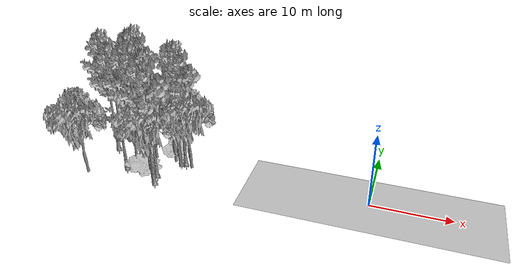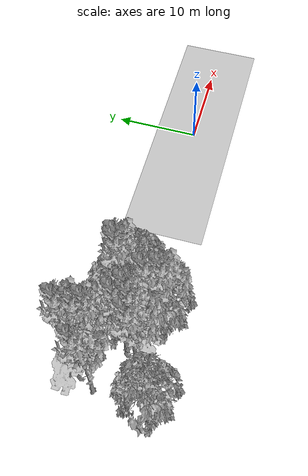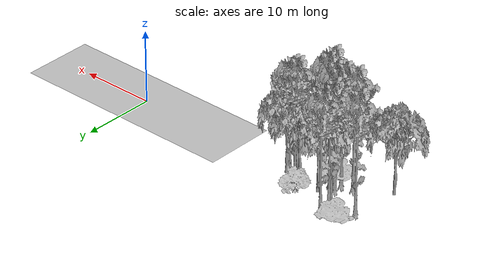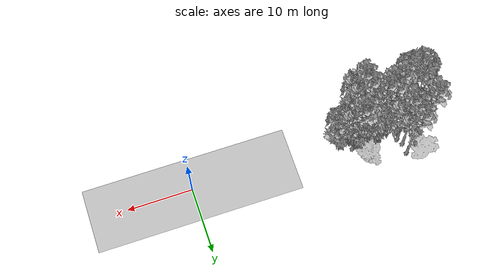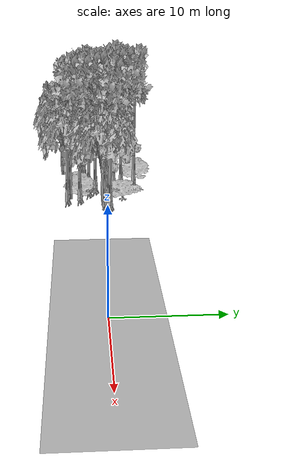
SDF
<sdf version="1.7">
 <world name="default">
  <model name="ground_plane">
   <static>1</static>
   <link name="link">
    <collision name="collision">
     <pose>-50 0 0 0 -0 0</pose>
     <geometry><plane><normal>0 0 1</normal><size>100 100</size></plane></geometry>
     <surface><contact><ode><min_depth>0.01</min_depth><max_vel>0</max_vel></ode></contact></surface>
    </collision>
    <visual name="grass">
     <cast_shadows>0</cast_shadows>
     <geometry>
      <mesh>
       <scale>0.5814285714285714 0.18142857142857144 0.1</scale>
       <uri>file://grass_plane/meshes/grass_plane.dae</uri>
      </mesh>
     </geometry>
    </visual>
   </link>
  </model>
  <model name="Tree 5">
   <static>1</static>
   <pose>-29.21881399212414 -2.4998693914355172 0 1.57079 -0 0</pose>
   <link name="link">
    <collision name="collision">
     <geometry><mesh><scale>3 2 3</scale><uri>model://tree_3/meshes/tree_3.obj</uri></mesh></geometry>
    </collision>
    <visual name="visual">
     <geometry><mesh><scale>3 2 3</scale><uri>model://tree_3/meshes/tree_3.obj</uri></mesh></geometry>
    </visual>
   </link>
  </model>
  <model name="Tree 54">
   <static>1</static>
   <pose>-32.02114886522466 -1.8515691958540632 0 1.57079 -0 0</pose>
   <link name="link">
    <collision name="collision">
     <geometry><mesh><scale>3.5 5 3.5</scale><uri>model://tree_9/meshes/tree_9.obj</uri></mesh></geometry>
    </collision>
    <visual name="visual">
     <geometry><mesh><scale>3.5 5 3.5</scale><uri>model://tree_9/meshes/tree_9.obj</uri></mesh></geometry>
    </visual>
   </link>
  </model>
  <model name="Tree 55">
   <static>1</static>
   <pose>-24.864350440698413 1.3218693597686624 0 1.57079 -0 0</pose>
   <link name="link">
    <collision name="collision">
     <geometry><mesh><scale>3.5 5 3.5</scale><uri>model://tree_9/meshes/tree_9.obj</uri></mesh></geometry>
    </collision>
    <visual name="visual">
     <geometry><mesh><scale>3.5 5 3.5</scale><uri>model://tree_9/meshes/tree_9.obj</uri></mesh></geometry>
    </visual>
   </link>
  </model>
  <model name="Tree 76">
   <static>1</static>
   <pose>-34.814906298194984 4.6248376932151025 0 1.57079 -0 0</pose>
   <link name="link">
    <collision name="collision">
     <geometry><mesh><scale>3 2 3</scale><uri>model://tree_3/meshes/tree_3.obj</uri></mesh></geometry>
    </collision>
    <visual name="visual">
     <geometry><mesh><scale>3 2 3</scale><uri>model://tree_3/meshes/tree_3.obj</uri></mesh></geometry>
    </visual>
   </link>
  </model>
  <model name="Tree 95">
   <static>1</static>
   <pose>-25.35005514734193 0.5058380098530719 0 1.57079 -0 0</pose>
   <link name="link">
    <collision name="collision">
     <geometry><mesh><scale>3.5 5 3.5</scale><uri>model://tree_2/meshes/tree_2.obj</uri></mesh></geometry>
    </collision>
    <visual name="visual">
     <geometry><mesh><scale>3.5 5 3.5</scale><uri>model://tree_2/meshes/tree_2.obj</uri></mesh></geometry>
    </visual>
   </link>
  </model>
  <model name="Tree 98">
   <static>1</static>
   <pose>-36.428803381543126 -4.341760985315727 0 1.57079 -0 0</pose>
   <link name="link">
    <collision name="collision">
     <geometry><mesh><scale>3.5 5 3.5</scale><uri>model://tree_2/meshes/tree_2.obj</uri></mesh></geometry>
    </collision>
    <visual name="visual">
     <geometry><mesh><scale>3.5 5 3.5</scale><uri>model://tree_2/meshes/tree_2.obj</uri></mesh></geometry>
    </visual>
   </link>
  </model>
  <model name="Tree 124">
   <static>1</static>
   <pose>-23.767717955621176 0.5628327683738945 0 1.57079 -0 0</pose>
   <link name="link">
    <collision name="collision">
     <geometry><mesh><scale>3.5 5 3.5</scale><uri>model://tree_2/meshes/tree_2.obj</uri></mesh></geometry>
    </collision>
    <visual name="visual">
     <geometry><mesh><scale>3.5 5 3.5</scale><uri>model://tree_2/meshes/tree_2.obj</uri></mesh></geometry>
    </visual>
   </link>
  </model>
  <model name="Tree 139">
   <static>1</static>
   <pose>-27.050766096649706 2.8859606431824893 0 1.57079 -0 0</pose>
   <link name="link">
    <collision name="collision">
     <geometry><mesh><scale>4 2.5 4</scale><uri>model://tree_1/meshes/tree_1.obj</uri></mesh></geometry>
    </collision>
    <visual name="visual">
     <geometry><mesh><scale>4 2.5 4</scale><uri>model://tree_1/meshes/tree_1.obj</uri></mesh></geometry>
    </visual>
   </link>
  </model>
  <model name="Tree 178">
   <static>1</static>
   <pose>-30.432813068663307 -1.5722076642737939 0 1.57079 -0 0</pose>
   <link name="link">
    <collision name="collision">
     <geometry><mesh><scale>3.5 5 3.5</scale><uri>model://tree_9/meshes/tree_9.obj</uri></mesh></geometry>
    </collision>
    <visual name="visual">
     <geometry><mesh><scale>3.5 5 3.5</scale><uri>model://tree_9/meshes/tree_9.obj</uri></mesh></geometry>
    </visual>
   </link>
  </model>
  <model name="Tree 180">
   <static>1</static>
   <pose>-27.49284651263252 -3.302958220946575 0 1.57079 -0 0</pose>
   <link name="link">
    <collision name="collision">
     <geometry><mesh><scale>3.5 5 3.5</scale><uri>model://tree_2/meshes/tree_2.obj</uri></mesh></geometry>
    </collision>
    <visual name="visual">
     <geometry><mesh><scale>3.5 5 3.5</scale><uri>model://tree_2/meshes/tree_2.obj</uri></mesh></geometry>
    </visual>
   </link>
  </model>
  <model name="Tree 228">
   <static>1</static>
   <pose>-27.39966699032247 -2.173998175792736 0 1.57079 -0 0</pose>
   <link name="link">
    <collision name="collision">
     <geometry><mesh><scale>3.5 5 3.5</scale><uri>model://tree_9/meshes/tree_9.obj</uri></mesh></geometry>
    </collision>
    <visual name="visual">
     <geometry><mesh><scale>3.5 5 3.5</scale><uri>model://tree_9/meshes/tree_9.obj</uri></mesh></geometry>
    </visual>
   </link>
  </model>
  <model name="Tree 250">
   <static>1</static>
   <pose>-25.504783253767723 1.1951899398468626 0 1.57079 -0 0</pose>
   <link name="link">
    <collision name="collision">
     <geometry><mesh><scale>3.5 5 3.5</scale><uri>model://tree_9/meshes/tree_9.obj</uri></mesh></geometry>
    </collision>
    <visual name="visual">
     <geometry><mesh><scale>3.5 5 3.5</scale><uri>model://tree_9/meshes/tree_9.obj</uri></mesh></geometry>
    </visual>
   </link>
  </model>
  <model name="Tree 259">
   <static>1</static>
   <pose>-26.391346938010813 1.2711961931743012 0 1.57079 -0 0</pose>
   <link name="link">
    <collision name="collision">
     <geometry><mesh><scale>3.5 5 3.5</scale><uri>model://tree_2/meshes/tree_2.obj</uri></mesh></geometry>
    </collision>
    <visual name="visual">
     <geometry><mesh><scale>3.5 5 3.5</scale><uri>model://tree_2/meshes/tree_2.obj</uri></mesh></geometry>
    </visual>
   </link>
  </model>
  <model name="Tree 279">
   <static>1</static>
   <pose>-32.39180134060118 4.571779431696665 0 1.57079 -0 0</pose>
   <link name="link">
    <collision name="collision">
     <geometry><mesh><scale>3.5 5 3.5</scale><uri>model://tree_9/meshes/tree_9.obj</uri></mesh></geometry>
    </collision>
    <visual name="visual">
     <geometry><mesh><scale>3.5 5 3.5</scale><uri>model://tree_9/meshes/tree_9.obj</uri></mesh></geometry>
    </visual>
   </link>
  </model>
  <model name="Tree 351">
   <static>1</static>
   <pose>-35.56512551546842 1.9314714417606282 0 1.57079 -0 0</pose>
   <link name="link">
    <collision name="collision">
     <geometry><mesh><scale>3.5 5 3.5</scale><uri>model://tree_9/meshes/tree_9.obj</uri></mesh></geometry>
    </collision>
    <visual name="visual">
     <geometry><mesh><scale>3.5 5 3.5</scale><uri>model://tree_9/meshes/tree_9.obj</uri></mesh></geometry>
    </visual>
   </link>
  </model>
  <model name="Tree 368">
   <static>1</static>
   <pose>-29.43613901299687 -1.0555673672381651 0 1.57079 -0 0</pose>
   <link name="link">
    <collision name="collision">
     <geometry><mesh><scale>3.5 5 3.5</scale><uri>model://tree_9/meshes/tree_9.obj</uri></mesh></geometry>
    </collision>
    <visual name="visual">
     <geometry><mesh><scale>3.5 5 3.5</scale><uri>model://tree_9/meshes/tree_9.obj</uri></mesh></geometry>
    </visual>
   </link>
  </model>
  <model name="Tree 402">
   <static>1</static>
   <pose>-27.005825649895858 -3.6354072419143293 0 1.57079 -0 0</pose>
   <link name="link">
    <collision name="collision">
     <geometry><mesh><scale>3.5 5 3.5</scale><uri>model://tree_9/meshes/tree_9.obj</uri></mesh></geometry>
    </collision>
    <visual name="visual">
     <geometry><mesh><scale>3.5 5 3.5</scale><uri>model://tree_9/meshes/tree_9.obj</uri></mesh></geometry>
    </visual>
   </link>
  </model>
  <model name="Tree 419">
   <static>1</static>
   <pose>-31.84593224114083 2.0321880587584573 0 1.57079 -0 0</pose>
   <link name="link">
    <collision name="collision">
     <geometry><mesh><scale>3.5 5 3.5</scale><uri>model://tree_9/meshes/tree_9.obj</uri></mesh></geometry>
    </collision>
    <visual name="visual">
     <geometry><mesh><scale>3.5 5 3.5</scale><uri>model://tree_9/meshes/tree_9.obj</uri></mesh></geometry>
    </visual>
   </link>
  </model>
  <model name="Tree 436">
   <static>1</static>
   <pose>-29.265852969700436 1.2320843602268994 0 1.57079 -0 0</pose>
   <link name="link">
    <collision name="collision">
     <geometry><mesh><scale>3.5 5 3.5</scale><uri>model://tree_2/meshes/tree_2.obj</uri></mesh></geometry>
    </collision>
    <visual name="visual">
     <geometry><mesh><scale>3.5 5 3.5</scale><uri>model://tree_2/meshes/tree_2.obj</uri></mesh></geometry>
    </visual>
   </link>
  </model>
  <model name="Tree 465">
   <static>1</static>
   <pose>-32.34016658309725 2.9698025482745933 0 1.57079 -0 0</pose>
   <link name="link">
    <collision name="collision">
     <geometry><mesh><scale>3.5 5 3.5</scale><uri>model://tree_9/meshes/tree_9.obj</uri></mesh></geometry>
    </collision>
    <visual name="visual">
     <geometry><mesh><scale>3.5 5 3.5</scale><uri>model://tree_9/meshes/tree_9.obj</uri></mesh></geometry>
    </visual>
   </link>
  </model>
  <model name="Tree 476">
   <static>1</static>
   <pose>-30.518664051394143 -0.2622905570746443 0 1.57079 -0 0</pose>
   <link name="link">
    <collision name="collision">
     <geometry><mesh><scale>3.5 5 3.5</scale><uri>model://tree_9/meshes/tree_9.obj</uri></mesh></geometry>
    </collision>
    <visual name="visual">
     <geometry><mesh><scale>3.5 5 3.5</scale><uri>model://tree_9/meshes/tree_9.obj</uri></mesh></geometry>
    </visual>
   </link>
  </model>
  <model name="Bush 4">
   <static>1</static>
   <pose>-29.820139981932524 -0.49195165269291863 0 1.57079 -0 0</pose>
   <link name="link">
    <collision name="collision">
     <geometry><mesh><scale>2 2 2</scale><uri>model://bush_2/meshes/bush_2.obj</uri></mesh></geometry>
     <surface><contact><collide_without_contact>false</collide_without_contact></contact></surface>
    </collision>
    <visual name="visual">
     <geometry><mesh><scale>2 2 2</scale><uri>model://bush_2/meshes/bush_2.obj</uri></mesh></geometry>
    </visual>
   </link>
  </model>
 </world>
</sdf>
